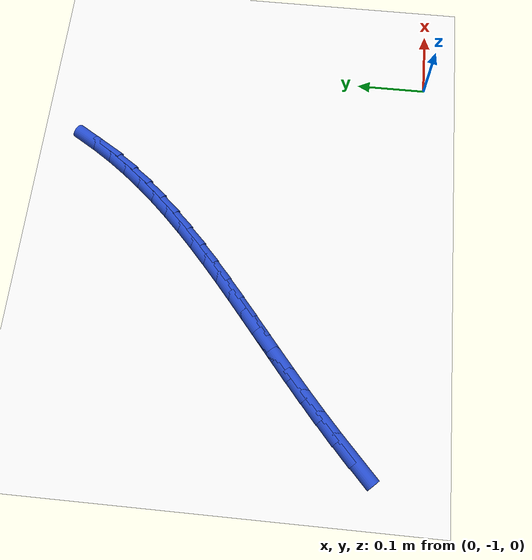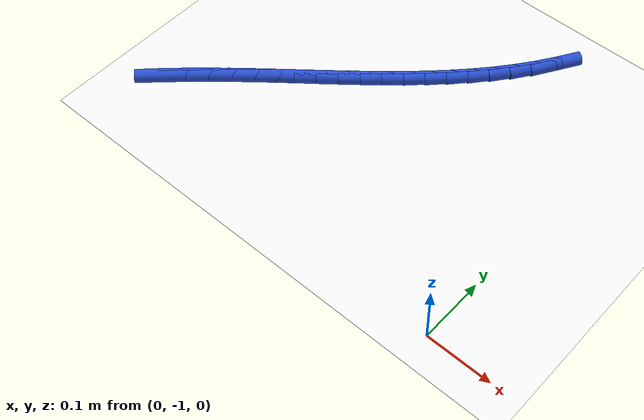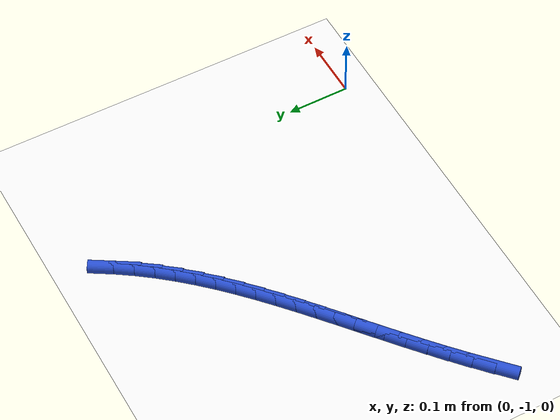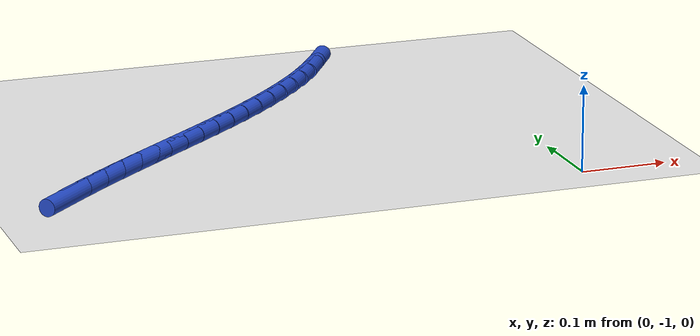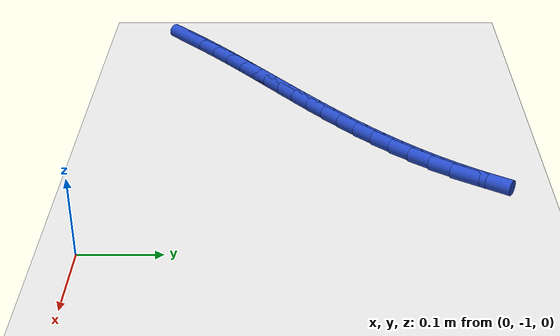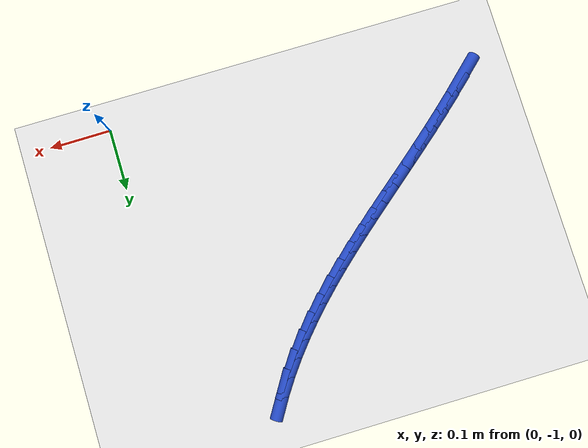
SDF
<sdf version="1.6">
 <world name="default">
  <model name="ground_plane">
   <static>1</static>
   <link name="link">
    <collision name="collision">
     <geometry><plane><normal>0 0 1</normal><size>100 100</size></plane></geometry>
     <surface><friction><ode><mu>100</mu><mu2>50</mu2></ode></friction></surface>
    </collision>
    <visual name="visual">
     <cast_shadows>0</cast_shadows>
     <geometry><plane><normal>0 0 1</normal><size>100 100</size></plane></geometry>
     <material>
      <script><uri>file://media/materials/scripts/gazebo.material</uri><name>Gazebo/WhiteGlow</name></script>
     </material>
    </visual>
   </link>
  </model>
  <model name="line">
   <link name="link_185">
    <pose>-0.5663689455269294 -0.9214366841230591 0.01 0 1.57 0.7478842215278353</pose>
    <collision name="collision">
     <geometry><cylinder><radius>0.01</radius><length>0.08</length></cylinder></geometry>
    </collision>
    <visual name="visual">
     <material>
      <script><name>Gazebo/Blue</name><uri>file://media/materials/scripts/gazebo.material</uri></script>
     </material>
     <geometry><cylinder><radius>0.01</radius><length>0.08</length></cylinder></geometry>
    </visual>
   </link>
   <link name="link_186">
    <pose>-0.5411313544111556 -0.8980249765693815 0.01 0 1.57 0.7277449533703246</pose>
    <collision name="collision">
     <geometry><cylinder><radius>0.01</radius><length>0.08</length></cylinder></geometry>
    </collision>
    <visual name="visual">
     <material>
      <script><name>Gazebo/Blue</name><uri>file://media/materials/scripts/gazebo.material</uri></script>
     </material>
     <geometry><cylinder><radius>0.01</radius><length>0.08</length></cylinder></geometry>
    </visual>
   </link>
   <link name="link_187">
    <pose>-0.5156975685472164 -0.8753669161083134 0.01 0 1.57 0.711258189939661</pose>
    <collision name="collision">
     <geometry><cylinder><radius>0.01</radius><length>0.08</length></cylinder></geometry>
    </collision>
    <visual name="visual">
     <material>
      <script><name>Gazebo/Blue</name><uri>file://media/materials/scripts/gazebo.material</uri></script>
     </material>
     <geometry><cylinder><radius>0.01</radius><length>0.08</length></cylinder></geometry>
    </visual>
   </link>
   <link name="link_188">
    <pose>-0.49014674925828305 -0.8533492957338025 0.01 0 1.57 0.6985736513174167</pose>
    <collision name="collision">
     <geometry><cylinder><radius>0.01</radius><length>0.08</length></cylinder></geometry>
    </collision>
    <visual name="visual">
     <material>
      <script><name>Gazebo/Blue</name><uri>file://media/materials/scripts/gazebo.material</uri></script>
     </material>
     <geometry><cylinder><radius>0.01</radius><length>0.08</length></cylinder></geometry>
    </visual>
   </link>
   <link name="link_189">
    <pose>-0.4645581406739792 -0.8318586251968608 0.01 0 1.57 0.6898188892310533</pose>
    <collision name="collision">
     <geometry><cylinder><radius>0.01</radius><length>0.08</length></cylinder></geometry>
    </collision>
    <visual name="visual">
     <material>
      <script><name>Gazebo/Blue</name><uri>file://media/materials/scripts/gazebo.material</uri></script>
     </material>
     <geometry><cylinder><radius>0.01</radius><length>0.08</length></cylinder></geometry>
    </visual>
   </link>
   <link name="link_190">
    <pose>-0.4390109869239278 -0.8107814142485003 0.01 0 1.57 0.6851114610120693</pose>
    <collision name="collision">
     <geometry><cylinder><radius>0.01</radius><length>0.08</length></cylinder></geometry>
    </collision>
    <visual name="visual">
     <material>
      <script><name>Gazebo/Blue</name><uri>file://media/materials/scripts/gazebo.material</uri></script>
     </material>
     <geometry><cylinder><radius>0.01</radius><length>0.08</length></cylinder></geometry>
    </visual>
   </link>
   <link name="link_191">
    <pose>-0.4135845321377536 -0.7900041726397333 0.01 0 1.57 0.6845622520959674</pose>
    <collision name="collision">
     <geometry><cylinder><radius>0.01</radius><length>0.08</length></cylinder></geometry>
    </collision>
    <visual name="visual">
     <material>
      <script><name>Gazebo/Blue</name><uri>file://media/materials/scripts/gazebo.material</uri></script>
     </material>
     <geometry><cylinder><radius>0.01</radius><length>0.08</length></cylinder></geometry>
    </visual>
   </link>
   <link name="link_192">
    <pose>-0.3883580204450795 -0.7694134101215716 0.01 0 1.57 0.6882771852322387</pose>
    <collision name="collision">
     <geometry><cylinder><radius>0.01</radius><length>0.08</length></cylinder></geometry>
    </collision>
    <visual name="visual">
     <material>
      <script><name>Gazebo/Blue</name><uri>file://media/materials/scripts/gazebo.material</uri></script>
     </material>
     <geometry><cylinder><radius>0.01</radius><length>0.08</length></cylinder></geometry>
    </visual>
   </link>
   <link name="link_193">
    <pose>-0.363410695975529 -0.7488956364450272 0.01 0 1.57 0.6963569119541397</pose>
    <collision name="collision">
     <geometry><cylinder><radius>0.01</radius><length>0.08</length></cylinder></geometry>
    </collision>
    <visual name="visual">
     <material>
      <script><name>Gazebo/Blue</name><uri>file://media/materials/scripts/gazebo.material</uri></script>
     </material>
     <geometry><cylinder><radius>0.01</radius><length>0.08</length></cylinder></geometry>
    </visual>
   </link>
   <link name="link_194">
    <pose>-0.33882180285872543 -0.7283373613611114 0.01 0 1.57 0.7088940960959641</pose>
    <collision name="collision">
     <geometry><cylinder><radius>0.01</radius><length>0.08</length></cylinder></geometry>
    </collision>
    <visual name="visual">
     <material>
      <script><name>Gazebo/Blue</name><uri>file://media/materials/scripts/gazebo.material</uri></script>
     </material>
     <geometry><cylinder><radius>0.01</radius><length>0.08</length></cylinder></geometry>
    </visual>
   </link>
   <link name="link_195">
    <pose>-0.31467058522429225 -0.7076250946208366 0.01 0 1.57 0.7259679258219599</pose>
    <collision name="collision">
     <geometry><cylinder><radius>0.01</radius><length>0.08</length></cylinder></geometry>
    </collision>
    <visual name="visual">
     <material>
      <script><name>Gazebo/Blue</name><uri>file://media/materials/scripts/gazebo.material</uri></script>
     </material>
     <geometry><cylinder><radius>0.01</radius><length>0.08</length></cylinder></geometry>
    </visual>
   </link>
   <link name="link_196">
    <pose>-0.29103628720185387 -0.6866453459752152 0.01 0 1.57 0.7476355665064303</pose>
    <collision name="collision">
     <geometry><cylinder><radius>0.01</radius><length>0.08</length></cylinder></geometry>
    </collision>
    <visual name="visual">
     <material>
      <script><name>Gazebo/Blue</name><uri>file://media/materials/scripts/gazebo.material</uri></script>
     </material>
     <geometry><cylinder><radius>0.01</radius><length>0.08</length></cylinder></geometry>
    </visual>
   </link>
   <link name="link_197">
    <pose>-0.2679981529210331 -0.6652846251752587 0.01 0 1.57 0.7739204403899534</pose>
    <collision name="collision">
     <geometry><cylinder><radius>0.01</radius><length>0.08</length></cylinder></geometry>
    </collision>
    <visual name="visual">
     <material>
      <script><name>Gazebo/Blue</name><uri>file://media/materials/scripts/gazebo.material</uri></script>
     </material>
     <geometry><cylinder><radius>0.01</radius><length>0.08</length></cylinder></geometry>
    </visual>
   </link>
   <link name="link_198">
    <pose>-0.24563542651145368 -0.6434294419719787 0.01 0 1.57 0.8047975439817091</pose>
    <collision name="collision">
     <geometry><cylinder><radius>0.01</radius><length>0.08</length></cylinder></geometry>
    </collision>
    <visual name="visual">
     <material>
      <script><name>Gazebo/Blue</name><uri>file://media/materials/scripts/gazebo.material</uri></script>
     </material>
     <geometry><cylinder><radius>0.01</radius><length>0.08</length></cylinder></geometry>
    </visual>
   </link>
   <link name="link_199">
    <pose>-0.22402735210273866 -0.6209663061163874 0.01 0 1.57 0.8401765333966397</pose>
    <collision name="collision">
     <geometry><cylinder><radius>0.01</radius><length>0.08</length></cylinder></geometry>
    </collision>
    <visual name="visual">
     <material>
      <script><name>Gazebo/Blue</name><uri>file://media/materials/scripts/gazebo.material</uri></script>
     </material>
     <geometry><cylinder><radius>0.01</radius><length>0.08</length></cylinder></geometry>
    </visual>
   </link>
   <link name="link_200">
    <pose>-0.20325317382451244 -0.5977817273594971 0.01 0 1.57 0.879884023116206</pose>
    <collision name="collision">
     <geometry><cylinder><radius>0.01</radius><length>0.08</length></cylinder></geometry>
    </collision>
    <visual name="visual">
     <material>
      <script><name>Gazebo/Blue</name><uri>file://media/materials/scripts/gazebo.material</uri></script>
     </material>
     <geometry><cylinder><radius>0.01</radius><length>0.08</length></cylinder></geometry>
    </visual>
   </link>
   <link name="link_201">
    <pose>-0.18339213580639815 -0.5737622154523196 0.01 0 1.57 0.9236473751806628</pose>
    <collision name="collision">
     <geometry><cylinder><radius>0.01</radius><length>0.08</length></cylinder></geometry>
    </collision>
    <visual name="visual">
     <material>
      <script><name>Gazebo/Blue</name><uri>file://media/materials/scripts/gazebo.material</uri></script>
     </material>
     <geometry><cylinder><radius>0.01</radius><length>0.08</length></cylinder></geometry>
    </visual>
   </link>
   <link name="link_202">
    <pose>-0.16452348217801935 -0.5487942801458668 0.01 0 1.57 0.9707410403264057</pose>
    <collision name="collision">
     <geometry><cylinder><radius>0.01</radius><length>0.08</length></cylinder></geometry>
    </collision>
    <visual name="visual">
     <material>
      <script><name>Gazebo/Blue</name><uri>file://media/materials/scripts/gazebo.material</uri></script>
     </material>
     <geometry><cylinder><radius>0.01</radius><length>0.08</length></cylinder></geometry>
    </visual>
   </link>
   <link name="link_203">
    <pose>-0.14672136762497473 -0.5227760882526132 0.01 0 1.57 1.0171030177597968</pose>
    <collision name="collision">
     <geometry><cylinder><radius>0.01</radius><length>0.08</length></cylinder></geometry>
    </collision>
    <visual name="visual">
     <material>
      <script><name>Gazebo/Blue</name><uri>file://media/materials/scripts/gazebo.material</uri></script>
     </material>
     <geometry><cylinder><radius>0.01</radius><length>0.08</length></cylinder></geometry>
    </visual>
   </link>
  </model>
 </world>
</sdf>
